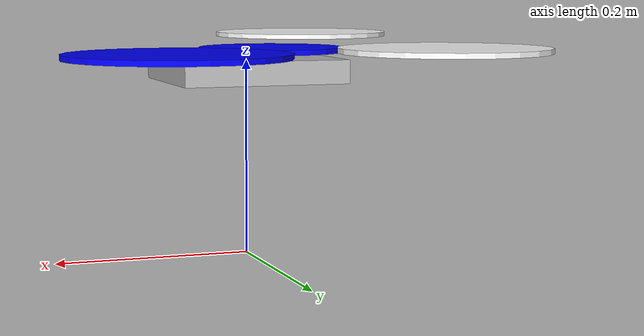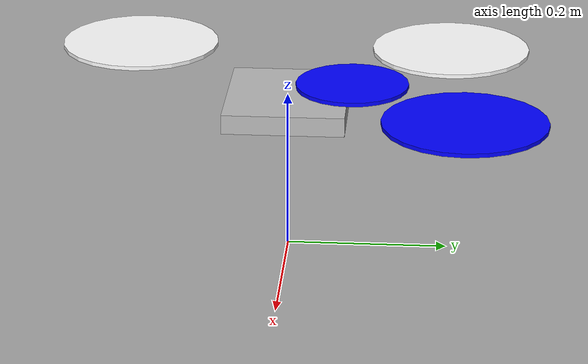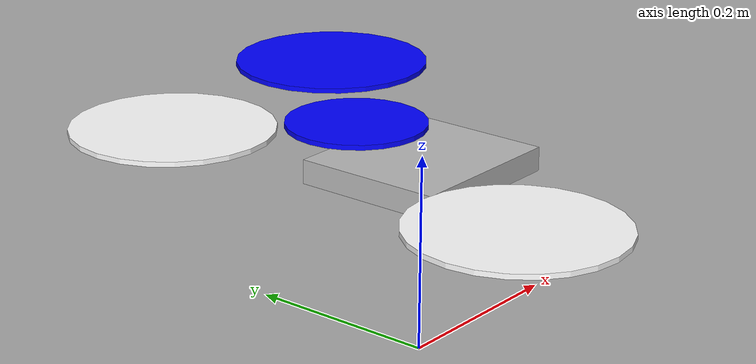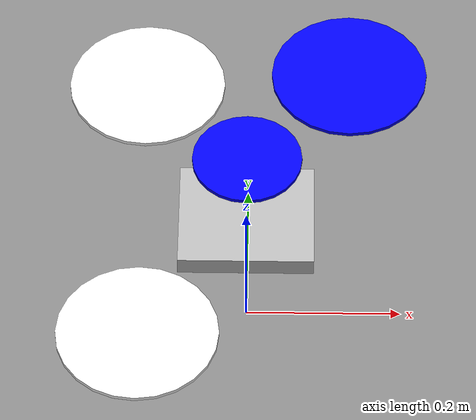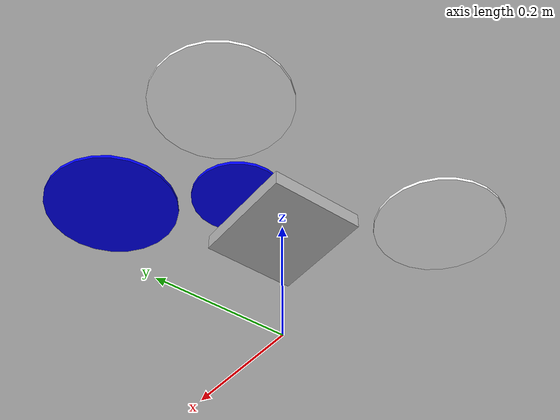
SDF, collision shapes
<?xml version='1.0'?>
<sdf version='1.9'>
  <model name='sapodrone'>
    <pose>0 0 0.194923 0 0 0</pose>
    <link name='base_link'>
      <velocity_decay>
        <linear>0.0</linear>
        <angular>0.0</angular>
      </velocity_decay>
      <inertial>
        <pose>0 0 0 0 0 0</pose>
        <mass>0.1</mass>
        <inertia>
          <ixx>0.00008</ixx>
          <ixy>0</ixy>
          <ixz>0</ixz>
          <iyy>0.00015</iyy>
          <iyz>0</iyz>
          <izz>0.00017</izz>
        </inertia>
      </inertial>
      <collision name='base_collision'>
        <pose>0 0 -0.004 0 0 0</pose>
        <geometry>
          <box>
            <size>0.17 0.15 0.024</size>
          </box>
        </geometry>
        <surface>
          <contact>
            <ode>
              <max_vel>100.0</max_vel>
              <min_depth>0.001</min_depth>
            </ode>
          </contact>
          <friction>
            <ode>
              <mu>100000.0</mu>
              <mu2>100000.0</mu2>
            </ode>
          </friction>
        </surface>
      </collision>
      <visual name='base_visual'>
        <geometry>
          <mesh>
            <uri>model://sapodrone/meshes/drone.dae</uri>
          </mesh>
        </geometry>
      </visual>
    </link>
    <link name='imu_link'>
      <inertial>
        <pose>0 0 0 0 0 0</pose>
        <mass>0.01</mass>
        <inertia>
          <ixx>0.000001</ixx>
          <ixy>0</ixy>
          <ixz>0</ixz>
          <iyy>0.000002</iyy>
          <iyz>0</iyz>
          <izz>0.000002</izz>
        </inertia>
      </inertial>
      <sensor name="imu_sensor" type="imu">
        <pose>0 0 0 3.141593 0 0</pose>
        <always_on>1</always_on>
        <update_rate>1000.0</update_rate>
      </sensor>
    </link>
    <joint name='imu_joint' type='revolute'>
      <child>imu_link</child>
      <parent>base_link</parent>
      <axis>
        <xyz>0 0 1</xyz>
        <limit>
          <lower>0</lower>
          <upper>0</upper>
          <effort>0</effort>
          <velocity>0</velocity>
        </limit>
        <dynamics>
          <damping>1.0</damping>
        </dynamics>
      </axis>
    </joint>
    <link name='rotor_0'>
      <pose>0.0 0.08 0.02 0 0 0</pose>
      <inertial>
        <pose>0 0 0 0 -0 0</pose>
        <mass>0.005</mass>
        <inertia>
          <ixx>9.75e-06</ixx>
          <ixy>0</ixy>
          <ixz>0</ixz>
          <iyy>0.000166704</iyy>
          <iyz>0</iyz>
          <izz>0.000167604</izz>
        </inertia>
      </inertial>
      <collision name='rotor_0_collision'>
        <pose>0 0 0 0 -0 0</pose>
        <geometry>
          <cylinder>
            <length>0.005</length>
            <radius>0.07</radius>
          </cylinder>
        </geometry>
        <surface>
          <contact>
            <ode/>
          </contact>
          <friction>
            <ode/>
          </friction>
        </surface>
      </collision>
      <visual name='rotor_0_visual'>
        <pose>0 0 0 0 -0 0</pose>
        <geometry>
          <mesh>
            <scale>1 1 1</scale>
            <uri>model://sapodrone/meshes/prop_ccw.dae</uri>
          </mesh>
        </geometry>
        <material>
          <ambient>0 0 1</ambient>
          <diffuse>0 0 1</diffuse>
          <specular>0.1 0.1 0.1 1</specular>
        </material>
      </visual>
      <gravity>1</gravity>
      <velocity_decay/>
      <self_collide>0</self_collide>
    </link>
    <joint name='rotor_0_joint' type='revolute'>
      <child>rotor_0</child>
      <parent>base_link</parent>
      <axis>
        <xyz>0 0 1</xyz>
        <limit>
          <lower>-1e+16</lower>
          <upper>1e+16</upper>
        </limit>
        <dynamics>
          <damping>0.004</damping>
        </dynamics>
      </axis>
      <physics>
        <ode>
          <implicit_spring_damper>1</implicit_spring_damper>
        </ode>
      </physics>
    </joint>
    <link name='rotor_1'>
      <pose>-0.13 0.2 0.023 0 -0 0</pose>
      <inertial>
        <pose>0 0 0 0 -0 0</pose>
        <mass>0.025</mass>
        <inertia>
          <ixx>9.75e-06</ixx>
          <ixy>0</ixy>
          <ixz>0</ixz>
          <iyy>0.000166704</iyy>
          <iyz>0</iyz>
          <izz>0.000167604</izz>
        </inertia>
      </inertial>
      <collision name='rotor_1_collision'>
        <pose>0 0 0 0 -0 0</pose>
        <geometry>
          <cylinder>
            <length>0.005</length>
            <radius>0.1</radius>
          </cylinder>
        </geometry>
        <surface>
          <contact>
            <ode/>
          </contact>
          <friction>
            <ode/>
          </friction>
        </surface>
      </collision>
      <visual name='rotor_1_visual'>
        <pose>0 0 0 0 -0 0</pose>
        <geometry>
          <mesh>
            <scale>1 1 1</scale>
            <uri>model://sapodrone/meshes/prop_ccw.dae</uri>
          </mesh>
        </geometry>
        <material>
          <ambient>1 1 1 1</ambient>
          <diffuse>1 1 1 1</diffuse>
          <specular>.1 .1 .1 1</specular>
        </material>
      </visual>
      <gravity>1</gravity>
      <velocity_decay/>
      <self_collide>0</self_collide>
    </link>
    <joint name='rotor_1_joint' type='revolute'>
      <child>rotor_1</child>
      <parent>base_link</parent>
      <axis>
        <xyz>0 0 1</xyz>
        <limit>
          <lower>-1e+16</lower>
          <upper>1e+16</upper>
        </limit>
        <dynamics>
          <damping>0.004</damping>
        </dynamics>
      </axis>
      <physics>
        <ode>
          <implicit_spring_damper>1</implicit_spring_damper>
        </ode>
      </physics>
    </joint>
    <link name='rotor_2'>
      <pose>0.13 0.22 0.023 0 -0 0</pose>
      <inertial>
        <pose>0 0 0 0 -0 0</pose>
        <mass>0.025</mass>
        <inertia>
          <ixx>9.75e-06</ixx>
          <ixy>0</ixy>
          <ixz>0</ixz>
          <iyy>0.000166704</iyy>
          <iyz>0</iyz>
          <izz>0.000167604</izz>
        </inertia>
      </inertial>
      <collision name='rotor_2_collision'>
        <pose>0 0 0 0 -0 0</pose>
        <geometry>
          <cylinder>
            <length>0.005</length>
            <radius>0.1</radius>
          </cylinder>
        </geometry>
        <surface>
          <contact>
            <ode/>
          </contact>
          <friction>
            <ode/>
          </friction>
        </surface>
      </collision>
      <visual name='rotor_2_visual'>
        <pose>0 0 0 0 -0 0</pose>
        <geometry>
          <mesh>
            <scale>1 1 1</scale>
            <uri>model://sapodrone/meshes/prop_cw.dae</uri>
          </mesh>
        </geometry>
        <material>
          <ambient>0 0 1</ambient>
          <diffuse>0 0 1</diffuse>
          <specular>0.1 0.1 0.1 1</specular>
        </material>
      </visual>
      <gravity>1</gravity>
      <velocity_decay/>
      <self_collide>0</self_collide>
    </link>
    <joint name='rotor_2_joint' type='revolute'>
      <child>rotor_2</child>
      <parent>base_link</parent>
      <axis>
        <xyz>0 0 1</xyz>
        <limit>
          <lower>-1e+16</lower>
          <upper>1e+16</upper>
        </limit>
        <dynamics>
          <damping>0.004</damping>
        </dynamics>
      </axis>
      <physics>
        <ode>
          <implicit_spring_damper>1</implicit_spring_damper>
        </ode>
      </physics>
    </joint>
    <link name='rotor_3'>
      <pose>-0.13 -0.2 0.023 0 -0 0</pose>
      <inertial>
        <pose>0 0 0 0 -0 0</pose>
        <mass>0.025</mass>
        <inertia>
          <ixx>9.75e-06</ixx>
          <ixy>0</ixy>
          <ixz>0</ixz>
          <iyy>0.000166704</iyy>
          <iyz>0</iyz>
          <izz>0.000167604</izz>
        </inertia>
      </inertial>
      <collision name='rotor_3_collision'>
        <pose>0 0 0 0 -0 0</pose>
        <geometry>
          <cylinder>
            <length>0.005</length>
            <radius>0.1</radius>
          </cylinder>
        </geometry>
        <surface>
          <contact>
            <ode/>
          </contact>
          <friction>
            <ode/>
          </friction>
        </surface>
      </collision>
      <visual name='rotor_3_visual'>
        <pose>0 0 0 0 -0 0</pose>
        <geometry>
          <mesh>
            <scale>1 1 1</scale>
            <uri>model://sapodrone/meshes/prop_cw.dae</uri>
          </mesh>
        </geometry>
        <material>
          <ambient>1 1 1 1</ambient>
          <diffuse>1 1 1 1</diffuse>
          <specular>.1 .1 .1 1</specular>
        </material>
      </visual>
      <gravity>1</gravity>
      <velocity_decay/>
      <self_collide>0</self_collide>
    </link>
    <joint name='rotor_3_joint' type='revolute'>
      <child>rotor_3</child>
      <parent>base_link</parent>
      <axis>
        <xyz>0 0 1</xyz>
        <limit>
          <lower>-1e+16</lower>
          <upper>1e+16</upper>
        </limit>
        <dynamics>
          <damping>0.004</damping>
        </dynamics>
      </axis>
      <physics>
        <ode>
          <implicit_spring_damper>1</implicit_spring_damper>
        </ode>
      </physics>
    </joint>
  </model>
</sdf>
